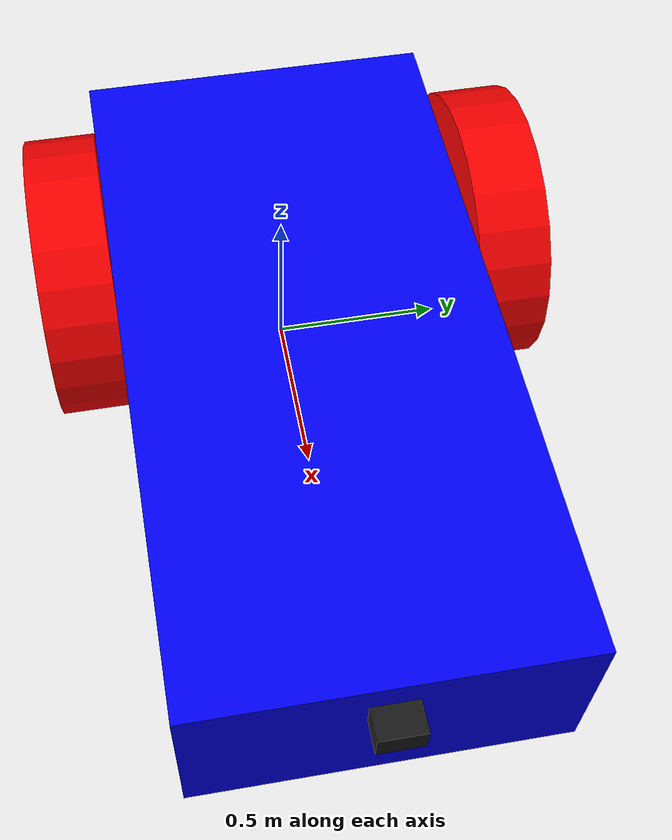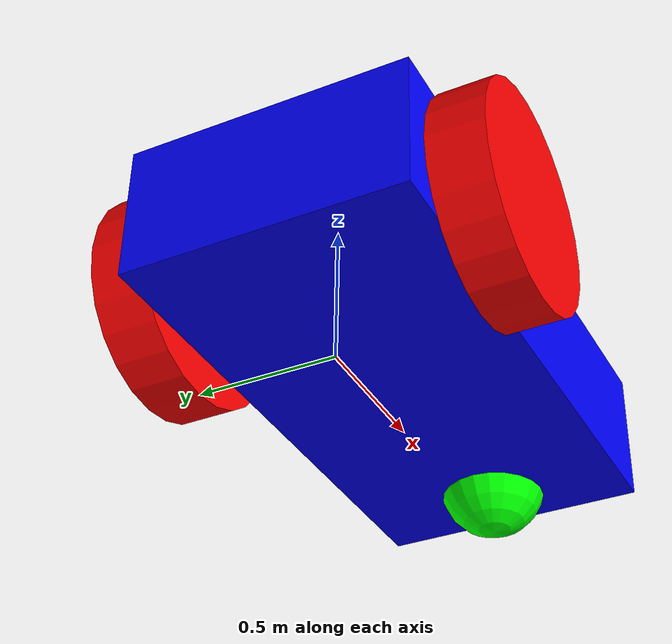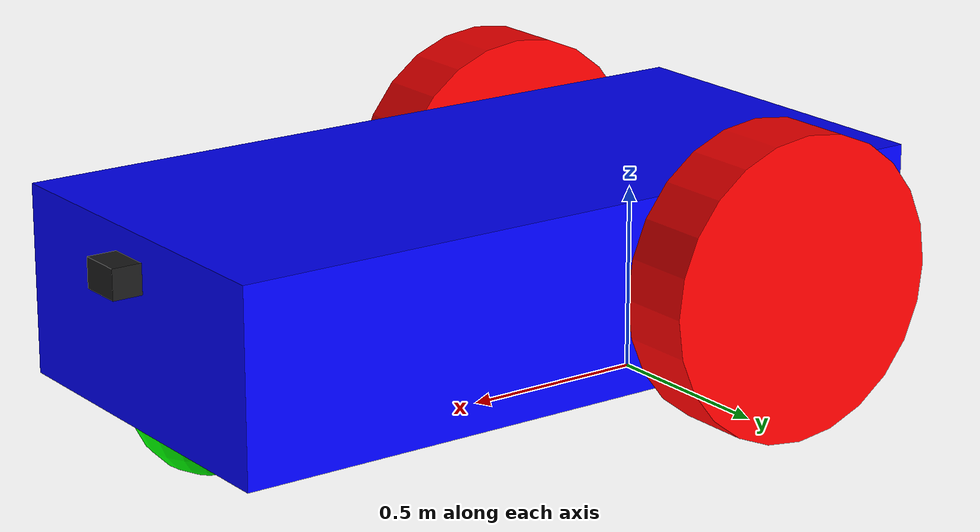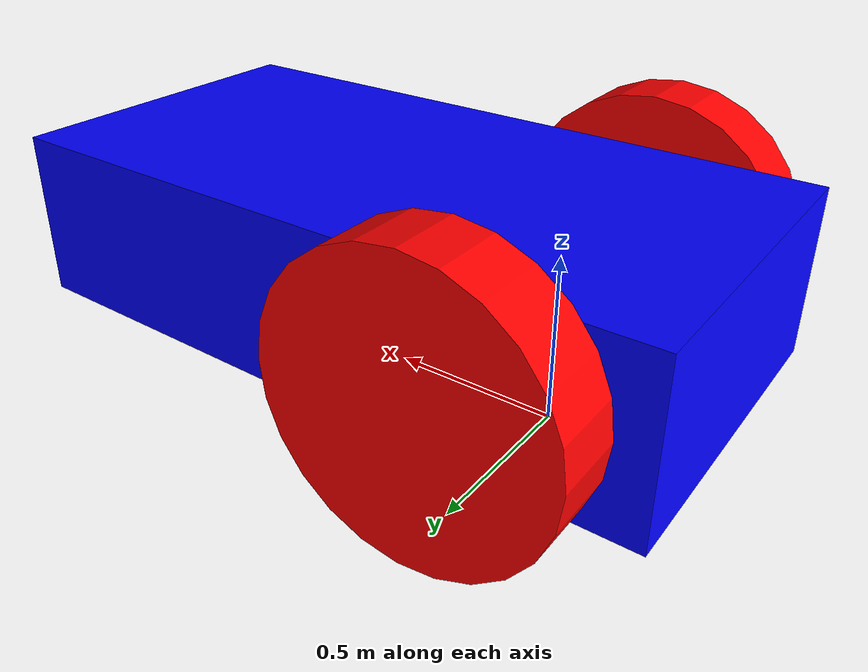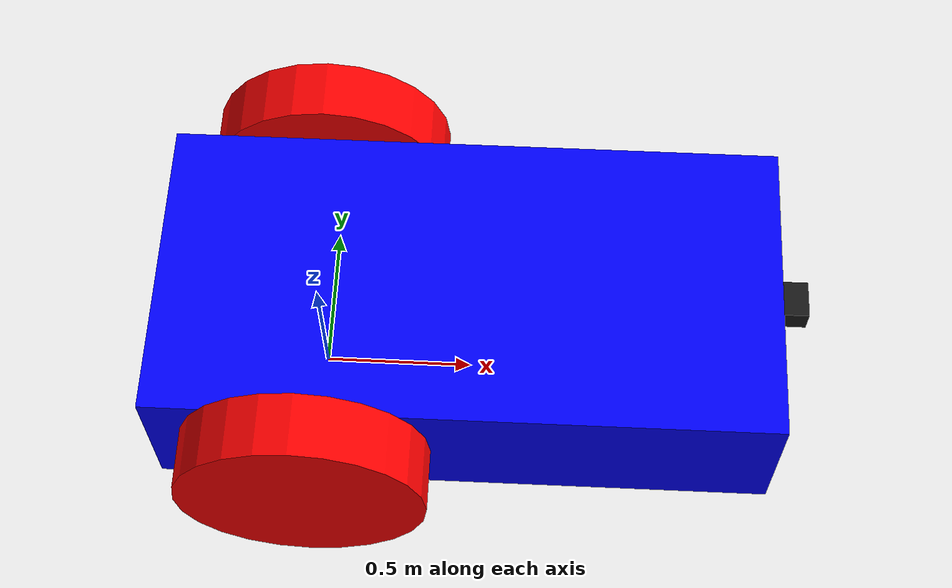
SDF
<?xml version="1.0" ?>
<sdf version='1.10'>
  <model name='vehicle_test'>
    <link name='chassis'>
        <pose relative_to='__model__'>0.5 0 0.4 0 0 0</pose>
        <inertial> <!--inertial properties of the link mass, inertia matix-->
            <mass>1.14395</mass>
            <inertia>
                <ixx>0.095329</ixx>
                <ixy>0</ixy>
                <ixz>0</ixz>
                <iyy>0.381317</iyy>
                <iyz>0</iyz>
                <izz>0.476646</izz>
            </inertia>
        </inertial>
        <visual name='visual'>
            <geometry>
                <box>
                    <size>2.0 1.0 0.5</size>
                </box>
            </geometry>
            <!--let's add color to our link-->
            <material>
                <ambient>0.0 0.0 1.0 1</ambient>
                <diffuse>0.0 0.0 1.0 1</diffuse>
                <specular>0.0 0.0 1.0 1</specular>
            </material>
        </visual>
        <collision name='collision'>
            <geometry>
                <box>
                    <size>2.0 1.0 0.5</size>
                </box>
            </geometry>
        </collision>
    </link>

    <link name='left_wheel'>
        <pose relative_to="chassis">-0.5 0.6 0 -1.5707 0 0</pose>
        <inertial>
            <mass>1</mass>
            <inertia>
                <ixx>0.043333</ixx>
                <ixy>0</ixy>
                <ixz>0</ixz>
                <iyy>0.043333</iyy>
                <iyz>0</iyz>
                <izz>0.08</izz>
            </inertia>
        </inertial>
        <visual name='visual'>
            <geometry>
                <cylinder>
                    <radius>0.4</radius>
                    <length>0.2</length>
                </cylinder>
            </geometry>
            <material>
                <ambient>1.0 0.0 0.0 1</ambient>
                <diffuse>1.0 0.0 0.0 1</diffuse>
                <specular>1.0 0.0 0.0 1</specular>
            </material>
        </visual>
        <collision name='collision'>
            <geometry>
                <cylinder>
                    <radius>0.4</radius>
                    <length>0.2</length>
                </cylinder>
            </geometry>
        </collision>
    </link>

<!--The same as left wheel but with different position-->
    <link name='right_wheel'>
        <pose relative_to="chassis">-0.5 -0.6 0 -1.5707 0 0</pose> <!--angles are in radian-->
        <inertial>
            <mass>1</mass>
            <inertia>
                <ixx>0.043333</ixx>
                <ixy>0</ixy>
                <ixz>0</ixz>
                <iyy>0.043333</iyy>
                <iyz>0</iyz>
                <izz>0.08</izz>
            </inertia>
        </inertial>
        <visual name='visual'>
            <geometry>
                <cylinder>
                    <radius>0.4</radius>
                    <length>0.2</length>
                </cylinder>
            </geometry>
            <material>
                <ambient>1.0 0.0 0.0 1</ambient>
                <diffuse>1.0 0.0 0.0 1</diffuse>
                <specular>1.0 0.0 0.0 1</specular>
            </material>
        </visual>
        <collision name='collision'>
            <geometry>
                <cylinder>
                    <radius>0.4</radius>
                    <length>0.2</length>
                </cylinder>
            </geometry>
        </collision>
    </link>

    <frame name="caster_frame" attached_to='chassis'>
        <pose>0.8 0 -0.2 0 0 0</pose>
    </frame>

        <!--caster wheel-->
    <link name='caster'>
        <pose relative_to='caster_frame'/>
        <inertial>
            <mass>1</mass>
            <inertia>
                <ixx>0.016</ixx>
                <ixy>0</ixy>
                <ixz>0</ixz>
                <iyy>0.016</iyy>
                <iyz>0</iyz>
                <izz>0.016</izz>
            </inertia>
        </inertial>
        <visual name='visual'>
            <geometry>
                <sphere>
                    <radius>0.2</radius>
                </sphere>
            </geometry>
            <material>
                <ambient>0.0 1 0.0 1</ambient>
                <diffuse>0.0 1 0.0 1</diffuse>
                <specular>0.0 1 0.0 1</specular>
            </material>
        </visual>
        <collision name='collision'>
            <geometry>
                <sphere>
                    <radius>0.2</radius>
                </sphere>
            </geometry>
        </collision>
    </link>

    <link name="camera_link">
        <pose relative_to="chassis">1.05 0 0.15 0 0 0</pose>

        <inertial>
            <mass>0.05</mass>
            <inertia>
                <ixx>0.0001</ixx>
                <ixy>0</ixy>
                <ixz>0</ixz>
                <iyy>0.0001</iyy>
                <iyz>0</iyz>
                <izz>0.0001</izz>
            </inertia>
        </inertial>
        <visual name="camera_visual">
            <geometry>
                <box>
                    <size>0.08 0.12 0.08</size>
                </box>
            </geometry>
            <material>
                <ambient>0.1 0.1 0.1 1</ambient>
                <diffuse>0.1 0.1 0.1 1</diffuse>
                <specular>0.2 0.2 0.2 1</specular>
            </material>
        </visual>
        <collision name="camera_collision">
            <geometry>
                <box>
                    <size>0.08 0.12 0.08</size>
                </box>
            </geometry>
        </collision>
        <sensor name="front_camera" type="camera">
            <pose>0.04 0 0 0 0 0</pose>
            <always_on>true</always_on>
            <update_rate>30</update_rate>
            <visualize>true</visualize>
            <camera>
                <horizontal_fov>1.0472</horizontal_fov>
                <image>
                    <width>640</width>
                    <height>480</height>
                    <format>R8G8B8</format>
                </image>
                <clip>
                    <near>0.05</near>
                    <far>100.0</far>
                </clip>
            </camera>
        </sensor>
    </link>

    <joint name='left_wheel_joint' type='revolute'>
        <pose relative_to='left_wheel'/>
        <parent>chassis</parent>
        <child>left_wheel</child>
        <axis>
            <xyz expressed_in='__model__'>0 1 0</xyz> <!--can be defined as any frame or even arbitrary frames-->
            <limit>
                <lower>-1.79769e+308</lower>    <!--negative infinity-->
                <upper>1.79769e+308</upper>     <!--positive infinity-->
            </limit>
        </axis>
    </joint>

    <joint name='right_wheel_joint' type='revolute'>
        <pose relative_to='right_wheel'/>
        <parent>chassis</parent>
        <child>right_wheel</child>
        <axis>
            <xyz expressed_in='__model__'>0 1 0</xyz>
            <limit>
                <lower>-1.79769e+308</lower>    <!--negative infinity-->
                <upper>1.79769e+308</upper>     <!--positive infinity-->
            </limit>
        </axis>
    </joint>

    <joint name='caster_wheel' type='ball'>
        <parent>chassis</parent>
        <child>caster</child>
    </joint>

    <joint name="camera_joint" type="fixed">
        <parent>chassis</parent>
        <child>camera_link</child>
    </joint>

    <plugin filename="gz-sim-diff-drive-system" name="gz::sim::systems::DiffDrive">
        <left_joint>left_wheel_joint</left_joint>
        <right_joint>right_wheel_joint</right_joint>
        <wheel_separation>1.25</wheel_separation>
        <wheel_radius>0.3</wheel_radius>
        <odom_publish_frequency>1</odom_publish_frequency>
        <max_linear_acceleration>1</max_linear_acceleration>
        <min_linear_acceleration>-1</min_linear_acceleration>
        <max_angular_acceleration>2</max_angular_acceleration>
        <min_angular_acceleration>-2</min_angular_acceleration>
        <max_linear_velocity>0.5</max_linear_velocity>
        <min_linear_velocity>-0.5</min_linear_velocity>
        <max_angular_velocity>1</max_angular_velocity>
        <min_angular_velocity>-1</min_angular_velocity>
    </plugin>
    <plugin filename="gz-sim-joint-state-publisher-system" name="gz::sim::systems::JointStatePublisher">
        <topic>/model/vehicle_test/joint_state</topic>
    </plugin>
  </model>
</sdf>
